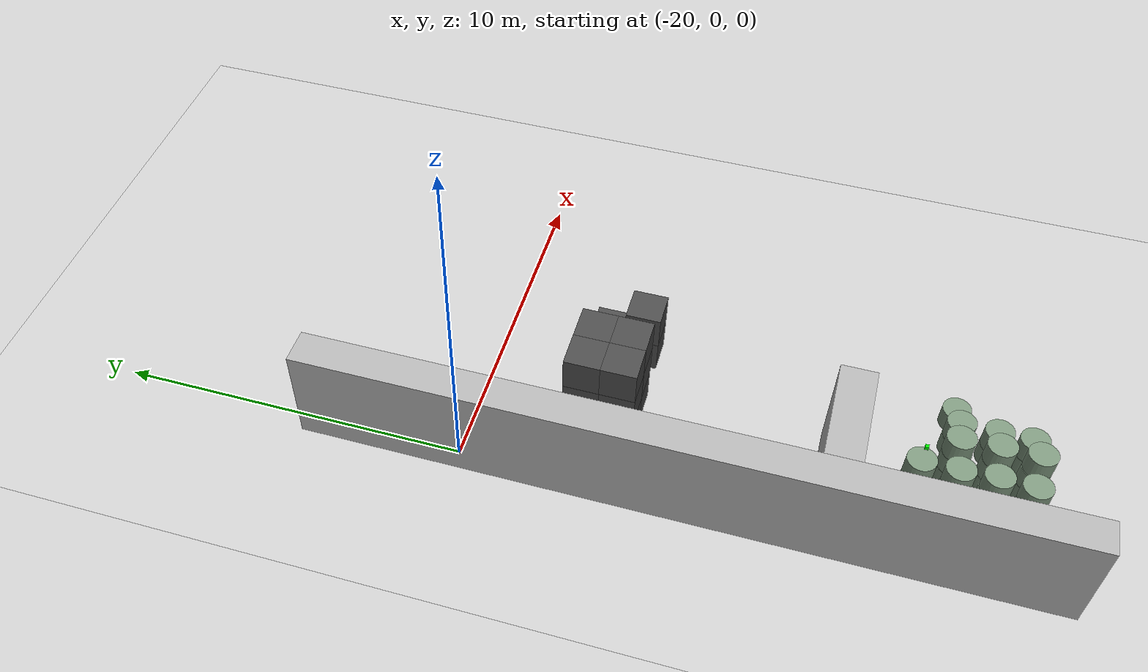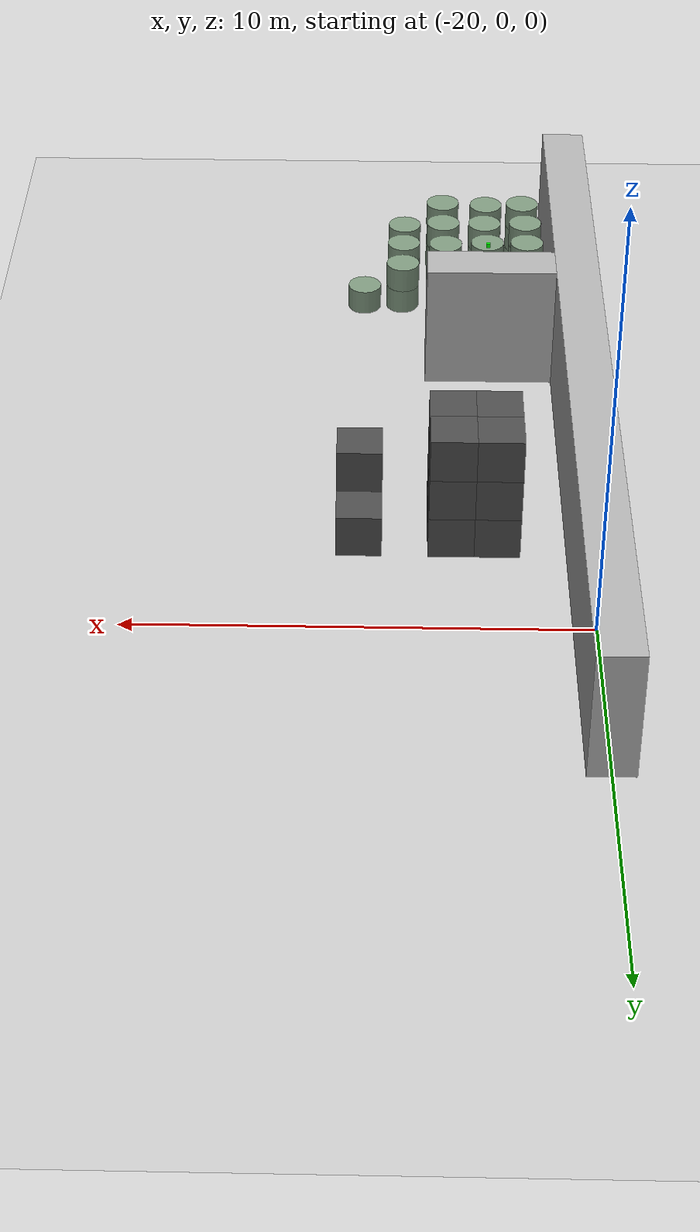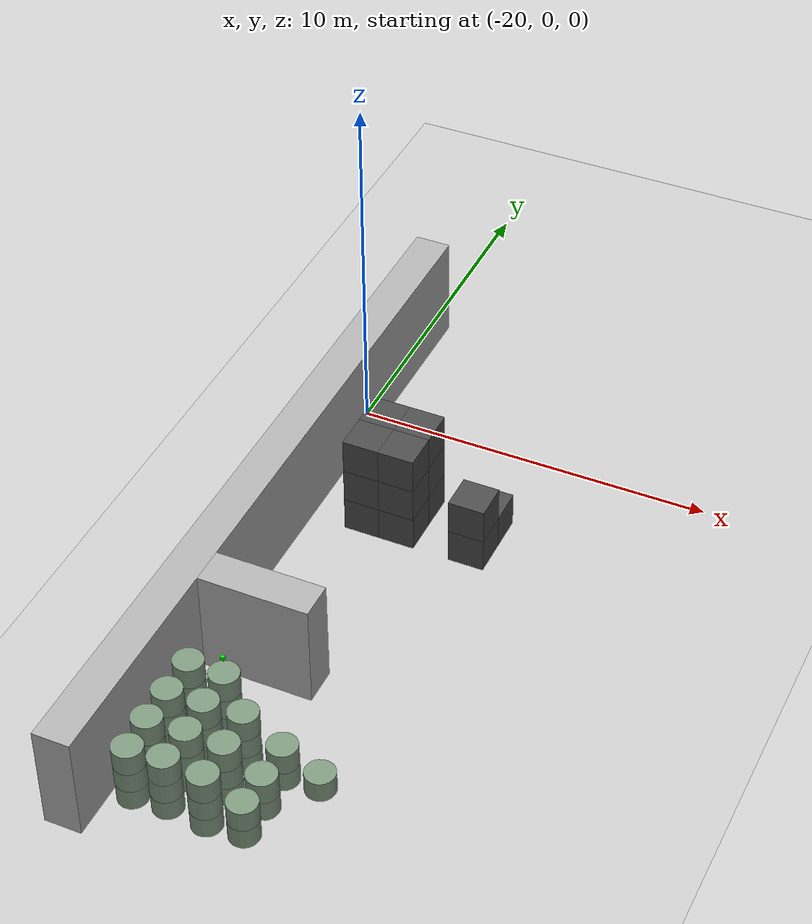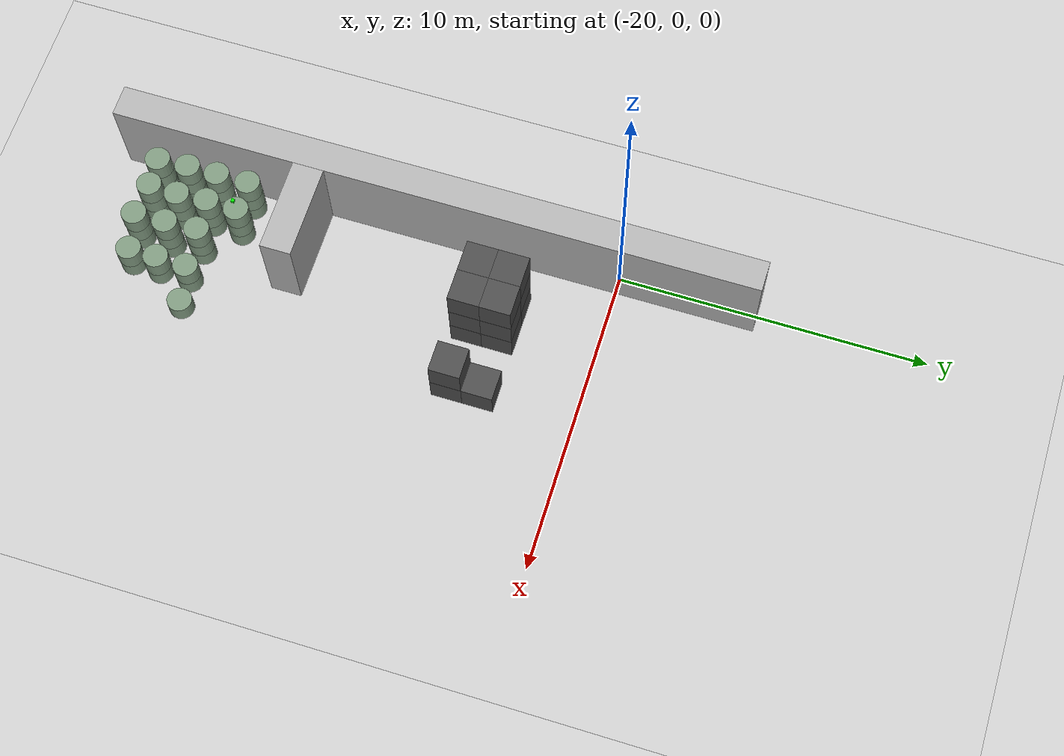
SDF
<sdf version="1.6">
 <world name="default">
  <model name="wall_0">
   <pose frame="sim_world">-20.0 -6.0 1.5 0 0 0</pose>
   <static>True</static>
   <link name="wall_0_link">
    <inertial>
     <mass>100</mass>
     <inertia>
      <ixx>0.166667</ixx>
      <ixy>0</ixy>
      <ixz>0</ixz>
      <iyy>0.166667</iyy>
      <iyz>0</iyz>
      <izz>0.166667</izz>
     </inertia>
    </inertial>
    <collision name="wall_0_collision">
     <geometry><box><size>1.0 21.0 3.0</size></box></geometry>
     <max_contacts>100</max_contacts>
    </collision>
    <visual name="wall_0_visual">
     <geometry><box><size>1.0 21.0 3.0</size></box></geometry>
     <material><ambient>0.7 0.7 0.7 1</ambient><diffuse>0.7 0.7 0.7 1</diffuse></material>
    </visual>
   </link>
  </model>
  <model name="wall_7">
   <pose frame="sim_world">-18.0 -10.0 1.5 0 0 0</pose>
   <static>True</static>
   <link name="wall_7_link">
    <inertial>
     <mass>100</mass>
     <inertia>
      <ixx>0.166667</ixx>
      <ixy>0</ixy>
      <ixz>0</ixz>
      <iyy>0.166667</iyy>
      <iyz>0</iyz>
      <izz>0.166667</izz>
     </inertia>
    </inertial>
    <collision name="wall_7_collision">
     <geometry><box><size>3.0 1.0 3.0</size></box></geometry>
     <max_contacts>100</max_contacts>
    </collision>
    <visual name="wall_7_visual">
     <geometry><box><size>3.0 1.0 3.0</size></box></geometry>
     <material><ambient>0.7 0.7 0.7 1</ambient><diffuse>0.7 0.7 0.7 1</diffuse></material>
    </visual>
   </link>
  </model>
  <model name="box_0">
   <pose frame="sim_world">-18.0 -4.0 0.5 0 -0 0</pose>
   <static>True</static>
   <link name="box_0_link">
    <inertial>
     <mass>100</mass>
     <inertia>
      <ixx>0.166667</ixx>
      <ixy>0</ixy>
      <ixz>0</ixz>
      <iyy>0.166667</iyy>
      <iyz>0</iyz>
      <izz>0.166667</izz>
     </inertia>
    </inertial>
    <collision name="box_0_collision">
     <geometry><box><size>1.0 1.0 1.0</size></box></geometry>
     <max_contacts>100</max_contacts>
    </collision>
    <visual name="box_0_visual">
     <geometry><box><size>1.0 1.0 1.0</size></box></geometry>
     <material><ambient>0.3 0.3 0.3 1</ambient><diffuse>0.3 0.3 0.3 1</diffuse></material>
    </visual>
   </link>
  </model>
  <model name="box_1">
   <pose frame="sim_world">-18.0 -4.0 1.5 0 -0 0</pose>
   <static>True</static>
   <link name="box_1_link">
    <inertial>
     <mass>100</mass>
     <inertia>
      <ixx>0.166667</ixx>
      <ixy>0</ixy>
      <ixz>0</ixz>
      <iyy>0.166667</iyy>
      <iyz>0</iyz>
      <izz>0.166667</izz>
     </inertia>
    </inertial>
    <collision name="box_1_collision">
     <geometry><box><size>1.0 1.0 1.0</size></box></geometry>
     <max_contacts>100</max_contacts>
    </collision>
    <visual name="box_1_visual">
     <geometry><box><size>1.0 1.0 1.0</size></box></geometry>
     <material><ambient>0.3 0.3 0.3 1</ambient><diffuse>0.3 0.3 0.3 1</diffuse></material>
    </visual>
   </link>
  </model>
  <model name="box_2">
   <pose frame="sim_world">-18.0 -4.0 2.5 0 -0 0</pose>
   <static>True</static>
   <link name="box_2_link">
    <inertial>
     <mass>100</mass>
     <inertia>
      <ixx>0.166667</ixx>
      <ixy>0</ixy>
      <ixz>0</ixz>
      <iyy>0.166667</iyy>
      <iyz>0</iyz>
      <izz>0.166667</izz>
     </inertia>
    </inertial>
    <collision name="box_2_collision">
     <geometry><box><size>1.0 1.0 1.0</size></box></geometry>
     <max_contacts>100</max_contacts>
    </collision>
    <visual name="box_2_visual">
     <geometry><box><size>1.0 1.0 1.0</size></box></geometry>
     <material><ambient>0.3 0.3 0.3 1</ambient><diffuse>0.3 0.3 0.3 1</diffuse></material>
    </visual>
   </link>
  </model>
  <model name="box_3">
   <pose frame="sim_world">-18.0 -3.0 0.5 0 -0 0</pose>
   <static>True</static>
   <link name="box_3_link">
    <inertial>
     <mass>100</mass>
     <inertia>
      <ixx>0.166667</ixx>
      <ixy>0</ixy>
      <ixz>0</ixz>
      <iyy>0.166667</iyy>
      <iyz>0</iyz>
      <izz>0.166667</izz>
     </inertia>
    </inertial>
    <collision name="box_3_collision">
     <geometry><box><size>1.0 1.0 1.0</size></box></geometry>
     <max_contacts>100</max_contacts>
    </collision>
    <visual name="box_3_visual">
     <geometry><box><size>1.0 1.0 1.0</size></box></geometry>
     <material><ambient>0.3 0.3 0.3 1</ambient><diffuse>0.3 0.3 0.3 1</diffuse></material>
    </visual>
   </link>
  </model>
  <model name="box_4">
   <pose frame="sim_world">-18.0 -3.0 1.5 0 -0 0</pose>
   <static>True</static>
   <link name="box_4_link">
    <inertial>
     <mass>100</mass>
     <inertia>
      <ixx>0.166667</ixx>
      <ixy>0</ixy>
      <ixz>0</ixz>
      <iyy>0.166667</iyy>
      <iyz>0</iyz>
      <izz>0.166667</izz>
     </inertia>
    </inertial>
    <collision name="box_4_collision">
     <geometry><box><size>1.0 1.0 1.0</size></box></geometry>
     <max_contacts>100</max_contacts>
    </collision>
    <visual name="box_4_visual">
     <geometry><box><size>1.0 1.0 1.0</size></box></geometry>
     <material><ambient>0.3 0.3 0.3 1</ambient><diffuse>0.3 0.3 0.3 1</diffuse></material>
    </visual>
   </link>
  </model>
  <model name="box_5">
   <pose frame="sim_world">-18.0 -3.0 2.5 0 -0 0</pose>
   <static>True</static>
   <link name="box_5_link">
    <inertial>
     <mass>100</mass>
     <inertia>
      <ixx>0.166667</ixx>
      <ixy>0</ixy>
      <ixz>0</ixz>
      <iyy>0.166667</iyy>
      <iyz>0</iyz>
      <izz>0.166667</izz>
     </inertia>
    </inertial>
    <collision name="box_5_collision">
     <geometry><box><size>1.0 1.0 1.0</size></box></geometry>
     <max_contacts>100</max_contacts>
    </collision>
    <visual name="box_5_visual">
     <geometry><box><size>1.0 1.0 1.0</size></box></geometry>
     <material><ambient>0.3 0.3 0.3 1</ambient><diffuse>0.3 0.3 0.3 1</diffuse></material>
    </visual>
   </link>
  </model>
  <model name="box_15">
   <pose frame="sim_world">-17.0 -4.0 0.5 0 -0 0</pose>
   <static>True</static>
   <link name="box_15_link">
    <inertial>
     <mass>100</mass>
     <inertia>
      <ixx>0.166667</ixx>
      <ixy>0</ixy>
      <ixz>0</ixz>
      <iyy>0.166667</iyy>
      <iyz>0</iyz>
      <izz>0.166667</izz>
     </inertia>
    </inertial>
    <collision name="box_15_collision">
     <geometry><box><size>1.0 1.0 1.0</size></box></geometry>
     <max_contacts>100</max_contacts>
    </collision>
    <visual name="box_15_visual">
     <geometry><box><size>1.0 1.0 1.0</size></box></geometry>
     <material><ambient>0.3 0.3 0.3 1</ambient><diffuse>0.3 0.3 0.3 1</diffuse></material>
    </visual>
   </link>
  </model>
  <model name="box_16">
   <pose frame="sim_world">-17.0 -4.0 1.5 0 -0 0</pose>
   <static>True</static>
   <link name="box_16_link">
    <inertial>
     <mass>100</mass>
     <inertia>
      <ixx>0.166667</ixx>
      <ixy>0</ixy>
      <ixz>0</ixz>
      <iyy>0.166667</iyy>
      <iyz>0</iyz>
      <izz>0.166667</izz>
     </inertia>
    </inertial>
    <collision name="box_16_collision">
     <geometry><box><size>1.0 1.0 1.0</size></box></geometry>
     <max_contacts>100</max_contacts>
    </collision>
    <visual name="box_16_visual">
     <geometry><box><size>1.0 1.0 1.0</size></box></geometry>
     <material><ambient>0.3 0.3 0.3 1</ambient><diffuse>0.3 0.3 0.3 1</diffuse></material>
    </visual>
   </link>
  </model>
  <model name="box_17">
   <pose frame="sim_world">-17.0 -4.0 2.5 0 -0 0</pose>
   <static>True</static>
   <link name="box_17_link">
    <inertial>
     <mass>100</mass>
     <inertia>
      <ixx>0.166667</ixx>
      <ixy>0</ixy>
      <ixz>0</ixz>
      <iyy>0.166667</iyy>
      <iyz>0</iyz>
      <izz>0.166667</izz>
     </inertia>
    </inertial>
    <collision name="box_17_collision">
     <geometry><box><size>1.0 1.0 1.0</size></box></geometry>
     <max_contacts>100</max_contacts>
    </collision>
    <visual name="box_17_visual">
     <geometry><box><size>1.0 1.0 1.0</size></box></geometry>
     <material><ambient>0.3 0.3 0.3 1</ambient><diffuse>0.3 0.3 0.3 1</diffuse></material>
    </visual>
   </link>
  </model>
  <model name="box_18">
   <pose frame="sim_world">-17.0 -3.0 0.5 0 -0 0</pose>
   <static>True</static>
   <link name="box_18_link">
    <inertial>
     <mass>100</mass>
     <inertia>
      <ixx>0.166667</ixx>
      <ixy>0</ixy>
      <ixz>0</ixz>
      <iyy>0.166667</iyy>
      <iyz>0</iyz>
      <izz>0.166667</izz>
     </inertia>
    </inertial>
    <collision name="box_18_collision">
     <geometry><box><size>1.0 1.0 1.0</size></box></geometry>
     <max_contacts>100</max_contacts>
    </collision>
    <visual name="box_18_visual">
     <geometry><box><size>1.0 1.0 1.0</size></box></geometry>
     <material><ambient>0.3 0.3 0.3 1</ambient><diffuse>0.3 0.3 0.3 1</diffuse></material>
    </visual>
   </link>
  </model>
  <model name="box_19">
   <pose frame="sim_world">-17.0 -3.0 1.5 0 -0 0</pose>
   <static>True</static>
   <link name="box_19_link">
    <inertial>
     <mass>100</mass>
     <inertia>
      <ixx>0.166667</ixx>
      <ixy>0</ixy>
      <ixz>0</ixz>
      <iyy>0.166667</iyy>
      <iyz>0</iyz>
      <izz>0.166667</izz>
     </inertia>
    </inertial>
    <collision name="box_19_collision">
     <geometry><box><size>1.0 1.0 1.0</size></box></geometry>
     <max_contacts>100</max_contacts>
    </collision>
    <visual name="box_19_visual">
     <geometry><box><size>1.0 1.0 1.0</size></box></geometry>
     <material><ambient>0.3 0.3 0.3 1</ambient><diffuse>0.3 0.3 0.3 1</diffuse></material>
    </visual>
   </link>
  </model>
  <model name="box_20">
   <pose frame="sim_world">-17.0 -3.0 2.5 0 -0 0</pose>
   <static>True</static>
   <link name="box_20_link">
    <inertial>
     <mass>100</mass>
     <inertia>
      <ixx>0.166667</ixx>
      <ixy>0</ixy>
      <ixz>0</ixz>
      <iyy>0.166667</iyy>
      <iyz>0</iyz>
      <izz>0.166667</izz>
     </inertia>
    </inertial>
    <collision name="box_20_collision">
     <geometry><box><size>1.0 1.0 1.0</size></box></geometry>
     <max_contacts>100</max_contacts>
    </collision>
    <visual name="box_20_visual">
     <geometry><box><size>1.0 1.0 1.0</size></box></geometry>
     <material><ambient>0.3 0.3 0.3 1</ambient><diffuse>0.3 0.3 0.3 1</diffuse></material>
    </visual>
   </link>
  </model>
  <model name="box_30">
   <pose frame="sim_world">-15.0 -4.0 0.5 0 -0 0</pose>
   <static>True</static>
   <link name="box_30_link">
    <inertial>
     <mass>100</mass>
     <inertia>
      <ixx>0.166667</ixx>
      <ixy>0</ixy>
      <ixz>0</ixz>
      <iyy>0.166667</iyy>
      <iyz>0</iyz>
      <izz>0.166667</izz>
     </inertia>
    </inertial>
    <collision name="box_30_collision">
     <geometry><box><size>1.0 1.0 1.0</size></box></geometry>
     <max_contacts>100</max_contacts>
    </collision>
    <visual name="box_30_visual">
     <geometry><box><size>1.0 1.0 1.0</size></box></geometry>
     <material><ambient>0.3 0.3 0.3 1</ambient><diffuse>0.3 0.3 0.3 1</diffuse></material>
    </visual>
   </link>
  </model>
  <model name="box_31">
   <pose frame="sim_world">-15.0 -4.0 1.5 0 -0 0</pose>
   <static>True</static>
   <link name="box_31_link">
    <inertial>
     <mass>100</mass>
     <inertia>
      <ixx>0.166667</ixx>
      <ixy>0</ixy>
      <ixz>0</ixz>
      <iyy>0.166667</iyy>
      <iyz>0</iyz>
      <izz>0.166667</izz>
     </inertia>
    </inertial>
    <collision name="box_31_collision">
     <geometry><box><size>1.0 1.0 1.0</size></box></geometry>
     <max_contacts>100</max_contacts>
    </collision>
    <visual name="box_31_visual">
     <geometry><box><size>1.0 1.0 1.0</size></box></geometry>
     <material><ambient>0.3 0.3 0.3 1</ambient><diffuse>0.3 0.3 0.3 1</diffuse></material>
    </visual>
   </link>
  </model>
  <model name="box_32">
   <pose frame="sim_world">-15.0 -3.0 0.5 0 -0 0</pose>
   <static>True</static>
   <link name="box_32_link">
    <inertial>
     <mass>100</mass>
     <inertia>
      <ixx>0.166667</ixx>
      <ixy>0</ixy>
      <ixz>0</ixz>
      <iyy>0.166667</iyy>
      <iyz>0</iyz>
      <izz>0.166667</izz>
     </inertia>
    </inertial>
    <collision name="box_32_collision">
     <geometry><box><size>1.0 1.0 1.0</size></box></geometry>
     <max_contacts>100</max_contacts>
    </collision>
    <visual name="box_32_visual">
     <geometry><box><size>1.0 1.0 1.0</size></box></geometry>
     <material><ambient>0.3 0.3 0.3 1</ambient><diffuse>0.3 0.3 0.3 1</diffuse></material>
    </visual>
   </link>
  </model>
  <model name="cylinder_0">
   <pose frame="sim_world">-18.959316148 -15.007619558 0.3 0 -0 0</pose>
   <static>True</static>
   <link name="cylinder_0_link">
    <inertial>
     <mass>100</mass>
     <inertia><ixx>0.145833</ixx><ixy>0</ixy><ixz>0</ixz><iyy>0.145833</iyy><iyz>0</iyz><izz>0.125</izz></inertia>
    </inertial>
    <collision name="cylinder_0_collision">
     <geometry><cylinder><length>0.6</length><radius>0.4</radius></cylinder></geometry>
     <max_contacts>100</max_contacts>
    </collision>
    <visual name="cylinder_0_visual">
     <geometry><cylinder><length>0.6</length><radius>0.4</radius></cylinder></geometry>
     <material><ambient>0.5 0.6 0.5 1</ambient><diffuse>0.5 0.6 0.5 1</diffuse></material>
    </visual>
   </link>
  </model>
  <model name="cylinder_1">
   <pose frame="sim_world">-18.971308413 -15.0053312633 0.9 0 -0 0</pose>
   <static>True</static>
   <link name="cylinder_1_link">
    <inertial>
     <mass>100</mass>
     <inertia><ixx>0.145833</ixx><ixy>0</ixy><ixz>0</ixz><iyy>0.145833</iyy><iyz>0</iyz><izz>0.125</izz></inertia>
    </inertial>
    <collision name="cylinder_1_collision">
     <geometry><cylinder><length>0.6</length><radius>0.4</radius></cylinder></geometry>
     <max_contacts>100</max_contacts>
    </collision>
    <visual name="cylinder_1_visual">
     <geometry><cylinder><length>0.6</length><radius>0.4</radius></cylinder></geometry>
     <material><ambient>0.5 0.6 0.5 1</ambient><diffuse>0.5 0.6 0.5 1</diffuse></material>
    </visual>
   </link>
  </model>
  <model name="cylinder_2">
   <pose frame="sim_world">-18.9624821748 -15.0196600294 1.5 0 -0 0</pose>
   <static>True</static>
   <link name="cylinder_2_link">
    <inertial>
     <mass>100</mass>
     <inertia><ixx>0.145833</ixx><ixy>0</ixy><ixz>0</ixz><iyy>0.145833</iyy><iyz>0</iyz><izz>0.125</izz></inertia>
    </inertial>
    <collision name="cylinder_2_collision">
     <geometry><cylinder><length>0.6</length><radius>0.4</radius></cylinder></geometry>
     <max_contacts>100</max_contacts>
    </collision>
    <visual name="cylinder_2_visual">
     <geometry><cylinder><length>0.6</length><radius>0.4</radius></cylinder></geometry>
     <material><ambient>0.5 0.6 0.5 1</ambient><diffuse>0.5 0.6 0.5 1</diffuse></material>
    </visual>
   </link>
  </model>
  <model name="cylinder_3">
   <pose frame="sim_world">-19.0131632857 -14.0317107217 0.3 0 -0 0</pose>
   <static>True</static>
   <link name="cylinder_3_link">
    <inertial>
     <mass>100</mass>
     <inertia><ixx>0.145833</ixx><ixy>0</ixy><ixz>0</ixz><iyy>0.145833</iyy><iyz>0</iyz><izz>0.125</izz></inertia>
    </inertial>
    <collision name="cylinder_3_collision">
     <geometry><cylinder><length>0.6</length><radius>0.4</radius></cylinder></geometry>
     <max_contacts>100</max_contacts>
    </collision>
    <visual name="cylinder_3_visual">
     <geometry><cylinder><length>0.6</length><radius>0.4</radius></cylinder></geometry>
     <material><ambient>0.5 0.6 0.5 1</ambient><diffuse>0.5 0.6 0.5 1</diffuse></material>
    </visual>
   </link>
  </model>
  <model name="cylinder_4">
   <pose frame="sim_world">-19.0187849716 -14.0319232782 0.9 0 -0 0</pose>
   <static>True</static>
   <link name="cylinder_4_link">
    <inertial>
     <mass>100</mass>
     <inertia><ixx>0.145833</ixx><ixy>0</ixy><ixz>0</ixz><iyy>0.145833</iyy><iyz>0</iyz><izz>0.125</izz></inertia>
    </inertial>
    <collision name="cylinder_4_collision">
     <geometry><cylinder><length>0.6</length><radius>0.4</radius></cylinder></geometry>
     <max_contacts>100</max_contacts>
    </collision>
    <visual name="cylinder_4_visual">
     <geometry><cylinder><length>0.6</length><radius>0.4</radius></cylinder></geometry>
     <material><ambient>0.5 0.6 0.5 1</ambient><diffuse>0.5 0.6 0.5 1</diffuse></material>
    </visual>
   </link>
  </model>
  <model name="cylinder_5">
   <pose frame="sim_world">-19.0073196621 -14.029464429 1.5 0 -0 0</pose>
   <static>True</static>
   <link name="cylinder_5_link">
    <inertial>
     <mass>100</mass>
     <inertia><ixx>0.145833</ixx><ixy>0</ixy><ixz>0</ixz><iyy>0.145833</iyy><iyz>0</iyz><izz>0.125</izz></inertia>
    </inertial>
    <collision name="cylinder_5_collision">
     <geometry><cylinder><length>0.6</length><radius>0.4</radius></cylinder></geometry>
     <max_contacts>100</max_contacts>
    </collision>
    <visual name="cylinder_5_visual">
     <geometry><cylinder><length>0.6</length><radius>0.4</radius></cylinder></geometry>
     <material><ambient>0.5 0.6 0.5 1</ambient><diffuse>0.5 0.6 0.5 1</diffuse></material>
    </visual>
   </link>
  </model>
  <model name="cylinder_6">
   <pose frame="sim_world">-19.0106808841 -13.0456514003 0.3 0 -0 0</pose>
   <static>True</static>
   <link name="cylinder_6_link">
    <inertial>
     <mass>100</mass>
     <inertia><ixx>0.145833</ixx><ixy>0</ixy><ixz>0</ixz><iyy>0.145833</iyy><iyz>0</iyz><izz>0.125</izz></inertia>
    </inertial>
    <collision name="cylinder_6_collision">
     <geometry><cylinder><length>0.6</length><radius>0.4</radius></cylinder></geometry>
     <max_contacts>100</max_contacts>
    </collision>
    <visual name="cylinder_6_visual">
     <geometry><cylinder><length>0.6</length><radius>0.4</radius></cylinder></geometry>
     <material><ambient>0.5 0.6 0.5 1</ambient><diffuse>0.5 0.6 0.5 1</diffuse></material>
    </visual>
   </link>
  </model>
  <model name="cylinder_7">
   <pose frame="sim_world">-19.0153126584 -13.0365221567 0.9 0 -0 0</pose>
   <static>True</static>
   <link name="cylinder_7_link">
    <inertial>
     <mass>100</mass>
     <inertia><ixx>0.145833</ixx><ixy>0</ixy><ixz>0</ixz><iyy>0.145833</iyy><iyz>0</iyz><izz>0.125</izz></inertia>
    </inertial>
    <collision name="cylinder_7_collision">
     <geometry><cylinder><length>0.6</length><radius>0.4</radius></cylinder></geometry>
     <max_contacts>100</max_contacts>
    </collision>
    <visual name="cylinder_7_visual">
     <geometry><cylinder><length>0.6</length><radius>0.4</radius></cylinder></geometry>
     <material><ambient>0.5 0.6 0.5 1</ambient><diffuse>0.5 0.6 0.5 1</diffuse></material>
    </visual>
   </link>
  </model>
  <model name="cylinder_8">
   <pose frame="sim_world">-19.0114435529 -13.0450554993 1.5 0 -0 0</pose>
   <static>True</static>
   <link name="cylinder_8_link">
    <inertial>
     <mass>100</mass>
     <inertia><ixx>0.145833</ixx><ixy>0</ixy><ixz>0</ixz><iyy>0.145833</iyy><iyz>0</iyz><izz>0.125</izz></inertia>
    </inertial>
    <collision name="cylinder_8_collision">
     <geometry><cylinder><length>0.6</length><radius>0.4</radius></cylinder></geometry>
     <max_contacts>100</max_contacts>
    </collision>
    <visual name="cylinder_8_visual">
     <geometry><cylinder><length>0.6</length><radius>0.4</radius></cylinder></geometry>
     <material><ambient>0.5 0.6 0.5 1</ambient><diffuse>0.5 0.6 0.5 1</diffuse></material>
    </visual>
   </link>
  </model>
  <model name="cylinder_9">
   <pose frame="sim_world">-19.001624628 -11.9979221648 0.3 0 -0 0</pose>
   <static>True</static>
   <link name="cylinder_9_link">
    <inertial>
     <mass>100</mass>
     <inertia><ixx>0.145833</ixx><ixy>0</ixy><ixz>0</ixz><iyy>0.145833</iyy><iyz>0</iyz><izz>0.125</izz></inertia>
    </inertial>
    <collision name="cylinder_9_collision">
     <geometry><cylinder><length>0.6</length><radius>0.4</radius></cylinder></geometry>
     <max_contacts>100</max_contacts>
    </collision>
    <visual name="cylinder_9_visual">
     <geometry><cylinder><length>0.6</length><radius>0.4</radius></cylinder></geometry>
     <material><ambient>0.5 0.6 0.5 1</ambient><diffuse>0.5 0.6 0.5 1</diffuse></material>
    </visual>
   </link>
  </model>
  <model name="cylinder_10">
   <pose frame="sim_world">-19.0097403797 -11.9995039183 0.9 0 -0 0</pose>
   <static>True</static>
   <link name="cylinder_10_link">
    <inertial>
     <mass>100</mass>
     <inertia><ixx>0.145833</ixx><ixy>0</ixy><ixz>0</ixz><iyy>0.145833</iyy><iyz>0</iyz><izz>0.125</izz></inertia>
    </inertial>
    <collision name="cylinder_10_collision">
     <geometry><cylinder><length>0.6</length><radius>0.4</radius></cylinder></geometry>
     <max_contacts>100</max_contacts>
    </collision>
    <visual name="cylinder_10_visual">
     <geometry><cylinder><length>0.6</length><radius>0.4</radius></cylinder></geometry>
     <material><ambient>0.5 0.6 0.5 1</ambient><diffuse>0.5 0.6 0.5 1</diffuse></material>
    </visual>
   </link>
  </model>
  <model name="cylinder_11">
   <pose frame="sim_world">-19.0067263731 -12.0035253512 1.5 0 -0 0</pose>
   <static>True</static>
   <link name="cylinder_11_link">
    <inertial>
     <mass>100</mass>
     <inertia><ixx>0.145833</ixx><ixy>0</ixy><ixz>0</ixz><iyy>0.145833</iyy><iyz>0</iyz><izz>0.125</izz></inertia>
    </inertial>
    <collision name="cylinder_11_collision">
     <geometry><cylinder><length>0.6</length><radius>0.4</radius></cylinder></geometry>
     <max_contacts>100</max_contacts>
    </collision>
    <visual name="cylinder_11_visual">
     <geometry><cylinder><length>0.6</length><radius>0.4</radius></cylinder></geometry>
     <material><ambient>0.5 0.6 0.5 1</ambient><diffuse>0.5 0.6 0.5 1</diffuse></material>
    </visual>
   </link>
  </model>
  <model name="cylinder_12">
   <pose frame="sim_world">-18.0480509087 -14.9457795685 0.3 0 -0 0</pose>
   <static>True</static>
   <link name="cylinder_12_link">
    <inertial>
     <mass>100</mass>
     <inertia><ixx>0.145833</ixx><ixy>0</ixy><ixz>0</ixz><iyy>0.145833</iyy><iyz>0</iyz><izz>0.125</izz></inertia>
    </inertial>
    <collision name="cylinder_12_collision">
     <geometry><cylinder><length>0.6</length><radius>0.4</radius></cylinder></geometry>
     <max_contacts>100</max_contacts>
    </collision>
    <visual name="cylinder_12_visual">
     <geometry><cylinder><length>0.6</length><radius>0.4</radius></cylinder></geometry>
     <material><ambient>0.5 0.6 0.5 1</ambient><diffuse>0.5 0.6 0.5 1</diffuse></material>
    </visual>
   </link>
  </model>
  <model name="cylinder_13">
   <pose frame="sim_world">-18.0464342256 -14.9599474216 0.9 0 -0 0</pose>
   <static>True</static>
   <link name="cylinder_13_link">
    <inertial>
     <mass>100</mass>
     <inertia><ixx>0.145833</ixx><ixy>0</ixy><ixz>0</ixz><iyy>0.145833</iyy><iyz>0</iyz><izz>0.125</izz></inertia>
    </inertial>
    <collision name="cylinder_13_collision">
     <geometry><cylinder><length>0.6</length><radius>0.4</radius></cylinder></geometry>
     <max_contacts>100</max_contacts>
    </collision>
    <visual name="cylinder_13_visual">
     <geometry><cylinder><length>0.6</length><radius>0.4</radius></cylinder></geometry>
     <material><ambient>0.5 0.6 0.5 1</ambient><diffuse>0.5 0.6 0.5 1</diffuse></material>
    </visual>
   </link>
  </model>
  <model name="cylinder_14">
   <pose frame="sim_world">-18.0468014585 -14.9503536522 1.5 0 -0 0</pose>
   <static>True</static>
   <link name="cylinder_14_link">
    <inertial>
     <mass>100</mass>
     <inertia><ixx>0.145833</ixx><ixy>0</ixy><ixz>0</ixz><iyy>0.145833</iyy><iyz>0</iyz><izz>0.125</izz></inertia>
    </inertial>
    <collision name="cylinder_14_collision">
     <geometry><cylinder><length>0.6</length><radius>0.4</radius></cylinder></geometry>
     <max_contacts>100</max_contacts>
    </collision>
    <visual name="cylinder_14_visual">
     <geometry><cylinder><length>0.6</length><radius>0.4</radius></cylinder></geometry>
     <material><ambient>0.5 0.6 0.5 1</ambient><diffuse>0.5 0.6 0.5 1</diffuse></material>
    </visual>
   </link>
  </model>
  <model name="cylinder_15">
   <pose frame="sim_world">-17.9912553921 -13.9925472065 0.3 0 -0 0</pose>
   <static>True</static>
   <link name="cylinder_15_link">
    <inertial>
     <mass>100</mass>
     <inertia><ixx>0.145833</ixx><ixy>0</ixy><ixz>0</ixz><iyy>0.145833</iyy><iyz>0</iyz><izz>0.125</izz></inertia>
    </inertial>
    <collision name="cylinder_15_collision">
     <geometry><cylinder><length>0.6</length><radius>0.4</radius></cylinder></geometry>
     <max_contacts>100</max_contacts>
    </collision>
    <visual name="cylinder_15_visual">
     <geometry><cylinder><length>0.6</length><radius>0.4</radius></cylinder></geometry>
     <material><ambient>0.5 0.6 0.5 1</ambient><diffuse>0.5 0.6 0.5 1</diffuse></material>
    </visual>
   </link>
  </model>
  <model name="cylinder_16">
   <pose frame="sim_world">-17.9995498637 -13.9826432503 0.9 0 -0 0</pose>
   <static>True</static>
   <link name="cylinder_16_link">
    <inertial>
     <mass>100</mass>
     <inertia><ixx>0.145833</ixx><ixy>0</ixy><ixz>0</ixz><iyy>0.145833</iyy><iyz>0</iyz><izz>0.125</izz></inertia>
    </inertial>
    <collision name="cylinder_16_collision">
     <geometry><cylinder><length>0.6</length><radius>0.4</radius></cylinder></geometry>
     <max_contacts>100</max_contacts>
    </collision>
    <visual name="cylinder_16_visual">
     <geometry><cylinder><length>0.6</length><radius>0.4</radius></cylinder></geometry>
     <material><ambient>0.5 0.6 0.5 1</ambient><diffuse>0.5 0.6 0.5 1</diffuse></material>
    </visual>
   </link>
  </model>
  <model name="cylinder_17">
   <pose frame="sim_world">-17.9888384934 -13.9974671024 1.5 0 -0 0</pose>
   <static>True</static>
   <link name="cylinder_17_link">
    <inertial>
     <mass>100</mass>
     <inertia><ixx>0.145833</ixx><ixy>0</ixy><ixz>0</ixz><iyy>0.145833</iyy><iyz>0</iyz><izz>0.125</izz></inertia>
    </inertial>
    <collision name="cylinder_17_collision">
     <geometry><cylinder><length>0.6</length><radius>0.4</radius></cylinder></geometry>
     <max_contacts>100</max_contacts>
    </collision>
    <visual name="cylinder_17_visual">
     <geometry><cylinder><length>0.6</length><radius>0.4</radius></cylinder></geometry>
     <material><ambient>0.5 0.6 0.5 1</ambient><diffuse>0.5 0.6 0.5 1</diffuse></material>
    </visual>
   </link>
  </model>
  <model name="cylinder_18">
   <pose frame="sim_world">-18.0441864407 -13.010032218 0.3 0 -0 0</pose>
   <static>True</static>
   <link name="cylinder_18_link">
    <inertial>
     <mass>100</mass>
     <inertia><ixx>0.145833</ixx><ixy>0</ixy><ixz>0</ixz><iyy>0.145833</iyy><iyz>0</iyz><izz>0.125</izz></inertia>
    </inertial>
    <collision name="cylinder_18_collision">
     <geometry><cylinder><length>0.6</length><radius>0.4</radius></cylinder></geometry>
     <max_contacts>100</max_contacts>
    </collision>
    <visual name="cylinder_18_visual">
     <geometry><cylinder><length>0.6</length><radius>0.4</radius></cylinder></geometry>
     <material><ambient>0.5 0.6 0.5 1</ambient><diffuse>0.5 0.6 0.5 1</diffuse></material>
    </visual>
   </link>
  </model>
  <model name="cylinder_19">
   <pose frame="sim_world">-18.0386908344 -13.0221577667 0.9 0 -0 0</pose>
   <static>True</static>
   <link name="cylinder_19_link">
    <inertial>
     <mass>100</mass>
     <inertia><ixx>0.145833</ixx><ixy>0</ixy><ixz>0</ixz><iyy>0.145833</iyy><iyz>0</iyz><izz>0.125</izz></inertia>
    </inertial>
    <collision name="cylinder_19_collision">
     <geometry><cylinder><length>0.6</length><radius>0.4</radius></cylinder></geometry>
     <max_contacts>100</max_contacts>
    </collision>
    <visual name="cylinder_19_visual">
     <geometry><cylinder><length>0.6</length><radius>0.4</radius></cylinder></geometry>
     <material><ambient>0.5 0.6 0.5 1</ambient><diffuse>0.5 0.6 0.5 1</diffuse></material>
    </visual>
   </link>
  </model>
  <model name="cylinder_20">
   <pose frame="sim_world">-18.0394728223 -13.0261113794 1.5 0 -0 0</pose>
   <static>True</static>
   <link name="cylinder_20_link">
    <inertial>
     <mass>100</mass>
     <inertia><ixx>0.145833</ixx><ixy>0</ixy><ixz>0</ixz><iyy>0.145833</iyy><iyz>0</iyz><izz>0.125</izz></inertia>
    </inertial>
    <collision name="cylinder_20_collision">
     <geometry><cylinder><length>0.6</length><radius>0.4</radius></cylinder></geometry>
     <max_contacts>100</max_contacts>
    </collision>
    <visual name="cylinder_20_visual">
     <geometry><cylinder><length>0.6</length><radius>0.4</radius></cylinder></geometry>
     <material><ambient>0.5 0.6 0.5 1</ambient><diffuse>0.5 0.6 0.5 1</diffuse></material>
    </visual>
   </link>
  </model>
  <model name="cylinder_21">
   <pose frame="sim_world">-18.0126456825 -12.0274707847 0.3 0 -0 0</pose>
   <static>True</static>
   <link name="cylinder_21_link">
    <inertial>
     <mass>100</mass>
     <inertia><ixx>0.145833</ixx><ixy>0</ixy><ixz>0</ixz><iyy>0.145833</iyy><iyz>0</iyz><izz>0.125</izz></inertia>
    </inertial>
    <collision name="cylinder_21_collision">
     <geometry><cylinder><length>0.6</length><radius>0.4</radius></cylinder></geometry>
     <max_contacts>100</max_contacts>
    </collision>
    <visual name="cylinder_21_visual">
     <geometry><cylinder><length>0.6</length><radius>0.4</radius></cylinder></geometry>
     <material><ambient>0.5 0.6 0.5 1</ambient><diffuse>0.5 0.6 0.5 1</diffuse></material>
    </visual>
   </link>
   <model name="radiation_source_cylinder_21">
    <static>true</static>
    <link name="link_radiation_source_cylinder_21">
     <visual name="visual_radiation_source_cylinder_21_0">
      <geometry><box><size>0.1 0.1 0.1</size></box></geometry>
      <material><ambient>1 0.0  0 1.0</ambient><diffuse>1 0.0  0 1.0</diffuse></material>
     </visual>
     <visual name="visual_radiation_source_cylinder_21_1">
      <pose>0 0 2.0 0 0 0</pose>
      <geometry><box><size>0.1 0.1 0.1</size></box></geometry>
      <material><ambient>0 1.0  0 1.0</ambient><diffuse>0 1.0  0 1.0</diffuse></material>
     </visual>
     <sensor name="radiation_source_cylinder_21" type="radiation_source">
      <always_on>1</always_on>
      <update_rate>1.0</update_rate>
      <topic>source_1/gamma</topic>
      <plugin filename="libradiation_source_plugin.so" name="radiation_source_plugin"/>
     </sensor>
    </link>
   </model>
  </model>
  <model name="cylinder_22">
   <pose frame="sim_world">-18.0307509393 -12.0205106246 0.9 0 -0 0</pose>
   <static>True</static>
   <link name="cylinder_22_link">
    <inertial>
     <mass>100</mass>
     <inertia><ixx>0.145833</ixx><ixy>0</ixy><ixz>0</ixz><iyy>0.145833</iyy><iyz>0</iyz><izz>0.125</izz></inertia>
    </inertial>
    <collision name="cylinder_22_collision">
     <geometry><cylinder><length>0.6</length><radius>0.4</radius></cylinder></geometry>
     <max_contacts>100</max_contacts>
    </collision>
    <visual name="cylinder_22_visual">
     <geometry><cylinder><length>0.6</length><radius>0.4</radius></cylinder></geometry>
     <material><ambient>0.5 0.6 0.5 1</ambient><diffuse>0.5 0.6 0.5 1</diffuse></material>
    </visual>
   </link>
  </model>
  <model name="cylinder_23">
   <pose frame="sim_world">-18.0191130103 -12.0246754442 1.5 0 -0 0</pose>
   <static>True</static>
   <link name="cylinder_23_link">
    <inertial>
     <mass>100</mass>
     <inertia><ixx>0.145833</ixx><ixy>0</ixy><ixz>0</ixz><iyy>0.145833</iyy><iyz>0</iyz><izz>0.125</izz></inertia>
    </inertial>
    <collision name="cylinder_23_collision">
     <geometry><cylinder><length>0.6</length><radius>0.4</radius></cylinder></geometry>
     <max_contacts>100</max_contacts>
    </collision>
    <visual name="cylinder_23_visual">
     <geometry><cylinder><length>0.6</length><radius>0.4</radius></cylinder></geometry>
     <material><ambient>0.5 0.6 0.5 1</ambient><diffuse>0.5 0.6 0.5 1</diffuse></material>
    </visual>
   </link>
  </model>
  <model name="cylinder_24">
   <pose frame="sim_world">-16.9628417723 -15.0325641967 0.3 0 -0 0</pose>
   <static>True</static>
   <link name="cylinder_24_link">
    <inertial>
     <mass>100</mass>
     <inertia><ixx>0.145833</ixx><ixy>0</ixy><ixz>0</ixz><iyy>0.145833</iyy><iyz>0</iyz><izz>0.125</izz></inertia>
    </inertial>
    <collision name="cylinder_24_collision">
     <geometry><cylinder><length>0.6</length><radius>0.4</radius></cylinder></geometry>
     <max_contacts>100</max_contacts>
    </collision>
    <visual name="cylinder_24_visual">
     <geometry><cylinder><length>0.6</length><radius>0.4</radius></cylinder></geometry>
     <material><ambient>0.5 0.6 0.5 1</ambient><diffuse>0.5 0.6 0.5 1</diffuse></material>
    </visual>
   </link>
  </model>
  <model name="cylinder_25">
   <pose frame="sim_world">-16.9710085345 -15.0271398519 0.9 0 -0 0</pose>
   <static>True</static>
   <link name="cylinder_25_link">
    <inertial>
     <mass>100</mass>
     <inertia><ixx>0.145833</ixx><ixy>0</ixy><ixz>0</ixz><iyy>0.145833</iyy><iyz>0</iyz><izz>0.125</izz></inertia>
    </inertial>
    <collision name="cylinder_25_collision">
     <geometry><cylinder><length>0.6</length><radius>0.4</radius></cylinder></geometry>
     <max_contacts>100</max_contacts>
    </collision>
    <visual name="cylinder_25_visual">
     <geometry><cylinder><length>0.6</length><radius>0.4</radius></cylinder></geometry>
     <material><ambient>0.5 0.6 0.5 1</ambient><diffuse>0.5 0.6 0.5 1</diffuse></material>
    </visual>
   </link>
  </model>
  <model name="cylinder_26">
   <pose frame="sim_world">-16.9606058049 -15.0334589072 1.5 0 -0 0</pose>
   <static>True</static>
   <link name="cylinder_26_link">
    <inertial>
     <mass>100</mass>
     <inertia><ixx>0.145833</ixx><ixy>0</ixy><ixz>0</ixz><iyy>0.145833</iyy><iyz>0</iyz><izz>0.125</izz></inertia>
    </inertial>
    <collision name="cylinder_26_collision">
     <geometry><cylinder><length>0.6</length><radius>0.4</radius></cylinder></geometry>
     <max_contacts>100</max_contacts>
    </collision>
    <visual name="cylinder_26_visual">
     <geometry><cylinder><length>0.6</length><radius>0.4</radius></cylinder></geometry>
     <material><ambient>0.5 0.6 0.5 1</ambient><diffuse>0.5 0.6 0.5 1</diffuse></material>
    </visual>
   </link>
  </model>
  <model name="cylinder_27">
   <pose frame="sim_world">-16.9623312986 -13.9950573994 0.3 0 -0 0</pose>
   <static>True</static>
   <link name="cylinder_27_link">
    <inertial>
     <mass>100</mass>
     <inertia><ixx>0.145833</ixx><ixy>0</ixy><ixz>0</ixz><iyy>0.145833</iyy><iyz>0</iyz><izz>0.125</izz></inertia>
    </inertial>
    <collision name="cylinder_27_collision">
     <geometry><cylinder><length>0.6</length><radius>0.4</radius></cylinder></geometry>
     <max_contacts>100</max_contacts>
    </collision>
    <visual name="cylinder_27_visual">
     <geometry><cylinder><length>0.6</length><radius>0.4</radius></cylinder></geometry>
     <material><ambient>0.5 0.6 0.5 1</ambient><diffuse>0.5 0.6 0.5 1</diffuse></material>
    </visual>
   </link>
  </model>
  <model name="cylinder_28">
   <pose frame="sim_world">-16.9686922264 -14.0045581278 0.9 0 -0 0</pose>
   <static>True</static>
   <link name="cylinder_28_link">
    <inertial>
     <mass>100</mass>
     <inertia><ixx>0.145833</ixx><ixy>0</ixy><ixz>0</ixz><iyy>0.145833</iyy><iyz>0</iyz><izz>0.125</izz></inertia>
    </inertial>
    <collision name="cylinder_28_collision">
     <geometry><cylinder><length>0.6</length><radius>0.4</radius></cylinder></geometry>
     <max_contacts>100</max_contacts>
    </collision>
    <visual name="cylinder_28_visual">
     <geometry><cylinder><length>0.6</length><radius>0.4</radius></cylinder></geometry>
     <material><ambient>0.5 0.6 0.5 1</ambient><diffuse>0.5 0.6 0.5 1</diffuse></material>
    </visual>
   </link>
  </model>
  <model name="cylinder_29">
   <pose frame="sim_world">-16.9640531606 -14.0054770334 1.5 0 -0 0</pose>
   <static>True</static>
   <link name="cylinder_29_link">
    <inertial>
     <mass>100</mass>
     <inertia><ixx>0.145833</ixx><ixy>0</ixy><ixz>0</ixz><iyy>0.145833</iyy><iyz>0</iyz><izz>0.125</izz></inertia>
    </inertial>
    <collision name="cylinder_29_collision">
     <geometry><cylinder><length>0.6</length><radius>0.4</radius></cylinder></geometry>
     <max_contacts>100</max_contacts>
    </collision>
    <visual name="cylinder_29_visual">
     <geometry><cylinder><length>0.6</length><radius>0.4</radius></cylinder></geometry>
     <material><ambient>0.5 0.6 0.5 1</ambient><diffuse>0.5 0.6 0.5 1</diffuse></material>
    </visual>
   </link>
  </model>
  <model name="cylinder_30">
   <pose frame="sim_world">-17.0108594412 -12.962065762 0.3 0 -0 0</pose>
   <static>True</static>
   <link name="cylinder_30_link">
    <inertial>
     <mass>100</mass>
     <inertia><ixx>0.145833</ixx><ixy>0</ixy><ixz>0</ixz><iyy>0.145833</iyy><iyz>0</iyz><izz>0.125</izz></inertia>
    </inertial>
    <collision name="cylinder_30_collision">
     <geometry><cylinder><length>0.6</length><radius>0.4</radius></cylinder></geometry>
     <max_contacts>100</max_contacts>
    </collision>
    <visual name="cylinder_30_visual">
     <geometry><cylinder><length>0.6</length><radius>0.4</radius></cylinder></geometry>
     <material><ambient>0.5 0.6 0.5 1</ambient><diffuse>0.5 0.6 0.5 1</diffuse></material>
    </visual>
   </link>
  </model>
  <model name="cylinder_31">
   <pose frame="sim_world">-17.0171946455 -12.9706675206 0.9 0 -0 0</pose>
   <static>True</static>
   <link name="cylinder_31_link">
    <inertial>
     <mass>100</mass>
     <inertia><ixx>0.145833</ixx><ixy>0</ixy><ixz>0</ixz><iyy>0.145833</iyy><iyz>0</iyz><izz>0.125</izz></inertia>
    </inertial>
    <collision name="cylinder_31_collision">
     <geometry><cylinder><length>0.6</length><radius>0.4</radius></cylinder></geometry>
     <max_contacts>100</max_contacts>
    </collision>
    <visual name="cylinder_31_visual">
     <geometry><cylinder><length>0.6</length><radius>0.4</radius></cylinder></geometry>
     <material><ambient>0.5 0.6 0.5 1</ambient><diffuse>0.5 0.6 0.5 1</diffuse></material>
    </visual>
   </link>
  </model>
  <model name="cylinder_32">
   <pose frame="sim_world">-17.0100374706 -12.9580437569 1.5 0 -0 0</pose>
   <static>True</static>
   <link name="cylinder_32_link">
    <inertial>
     <mass>100</mass>
     <inertia><ixx>0.145833</ixx><ixy>0</ixy><ixz>0</ixz><iyy>0.145833</iyy><iyz>0</iyz><izz>0.125</izz></inertia>
    </inertial>
    <collision name="cylinder_32_collision">
     <geometry><cylinder><length>0.6</length><radius>0.4</radius></cylinder></geometry>
     <max_contacts>100</max_contacts>
    </collision>
    <visual name="cylinder_32_visual">
     <geometry><cylinder><length>0.6</length><radius>0.4</radius></cylinder></geometry>
     <material><ambient>0.5 0.6 0.5 1</ambient><diffuse>0.5 0.6 0.5 1</diffuse></material>
    </visual>
   </link>
  </model>
  <model name="cylinder_33">
   <pose frame="sim_world">-16.0108980464 -14.9606443265 0.3 0 -0 0</pose>
   <static>True</static>
   <link name="cylinder_33_link">
    <inertial>
     <mass>100</mass>
     <inertia><ixx>0.145833</ixx><ixy>0</ixy><ixz>0</ixz><iyy>0.145833</iyy><iyz>0</iyz><izz>0.125</izz></inertia>
    </inertial>
    <collision name="cylinder_33_collision">
     <geometry><cylinder><length>0.6</length><radius>0.4</radius></cylinder></geometry>
     <max_contacts>100</max_contacts>
    </collision>
    <visual name="cylinder_33_visual">
     <geometry><cylinder><length>0.6</length><radius>0.4</radius></cylinder></geometry>
     <material><ambient>0.5 0.6 0.5 1</ambient><diffuse>0.5 0.6 0.5 1</diffuse></material>
    </visual>
   </link>
  </model>
  <model name="cylinder_34">
   <pose frame="sim_world">-16.0106779408 -14.9615345483 0.9 0 -0 0</pose>
   <static>True</static>
   <link name="cylinder_34_link">
    <inertial>
     <mass>100</mass>
     <inertia><ixx>0.145833</ixx><ixy>0</ixy><ixz>0</ixz><iyy>0.145833</iyy><iyz>0</iyz><izz>0.125</izz></inertia>
    </inertial>
    <collision name="cylinder_34_collision">
     <geometry><cylinder><length>0.6</length><radius>0.4</radius></cylinder></geometry>
     <max_contacts>100</max_contacts>
    </collision>
    <visual name="cylinder_34_visual">
     <geometry><cylinder><length>0.6</length><radius>0.4</radius></cylinder></geometry>
     <material><ambient>0.5 0.6 0.5 1</ambient><diffuse>0.5 0.6 0.5 1</diffuse></material>
    </visual>
   </link>
  </model>
  <model name="cylinder_35">
   <pose frame="sim_world">-15.9763314349 -14.0353731398 0.3 0 -0 0</pose>
   <static>True</static>
   <link name="cylinder_35_link">
    <inertial>
     <mass>100</mass>
     <inertia><ixx>0.145833</ixx><ixy>0</ixy><ixz>0</ixz><iyy>0.145833</iyy><iyz>0</iyz><izz>0.125</izz></inertia>
    </inertial>
    <collision name="cylinder_35_collision">
     <geometry><cylinder><length>0.6</length><radius>0.4</radius></cylinder></geometry>
     <max_contacts>100</max_contacts>
    </collision>
    <visual name="cylinder_35_visual">
     <geometry><cylinder><length>0.6</length><radius>0.4</radius></cylinder></geometry>
     <material><ambient>0.5 0.6 0.5 1</ambient><diffuse>0.5 0.6 0.5 1</diffuse></material>
    </visual>
   </link>
  </model>
  <model name="cylinder_36">
   <pose frame="sim_world">-15.9892862791 -14.0357803046 0.9 0 -0 0</pose>
   <static>True</static>
   <link name="cylinder_36_link">
    <inertial>
     <mass>100</mass>
     <inertia><ixx>0.145833</ixx><ixy>0</ixy><ixz>0</ixz><iyy>0.145833</iyy><iyz>0</iyz><izz>0.125</izz></inertia>
    </inertial>
    <collision name="cylinder_36_collision">
     <geometry><cylinder><length>0.6</length><radius>0.4</radius></cylinder></geometry>
     <max_contacts>100</max_contacts>
    </collision>
    <visual name="cylinder_36_visual">
     <geometry><cylinder><length>0.6</length><radius>0.4</radius></cylinder></geometry>
     <material><ambient>0.5 0.6 0.5 1</ambient><diffuse>0.5 0.6 0.5 1</diffuse></material>
    </visual>
   </link>
  </model>
  <model name="cylinder_37">
   <pose frame="sim_world">-15.9638298799 -13.0269606284 0.3 0 -0 0</pose>
   <static>True</static>
   <link name="cylinder_37_link">
    <inertial>
     <mass>100</mass>
     <inertia><ixx>0.145833</ixx><ixy>0</ixy><ixz>0</ixz><iyy>0.145833</iyy><iyz>0</iyz><izz>0.125</izz></inertia>
    </inertial>
    <collision name="cylinder_37_collision">
     <geometry><cylinder><length>0.6</length><radius>0.4</radius></cylinder></geometry>
     <max_contacts>100</max_contacts>
    </collision>
    <visual name="cylinder_37_visual">
     <geometry><cylinder><length>0.6</length><radius>0.4</radius></cylinder></geometry>
     <material><ambient>0.5 0.6 0.5 1</ambient><diffuse>0.5 0.6 0.5 1</diffuse></material>
    </visual>
   </link>
  </model>
  <model name="cylinder_38">
   <pose frame="sim_world">-15.9644079218 -13.0309062052 0.9 0 -0 0</pose>
   <static>True</static>
   <link name="cylinder_38_link">
    <inertial>
     <mass>100</mass>
     <inertia><ixx>0.145833</ixx><ixy>0</ixy><ixz>0</ixz><iyy>0.145833</iyy><iyz>0</iyz><izz>0.125</izz></inertia>
    </inertial>
    <collision name="cylinder_38_collision">
     <geometry><cylinder><length>0.6</length><radius>0.4</radius></cylinder></geometry>
     <max_contacts>100</max_contacts>
    </collision>
    <visual name="cylinder_38_visual">
     <geometry><cylinder><length>0.6</length><radius>0.4</radius></cylinder></geometry>
     <material><ambient>0.5 0.6 0.5 1</ambient><diffuse>0.5 0.6 0.5 1</diffuse></material>
    </visual>
   </link>
  </model>
  <model name="cylinder_41">
   <pose frame="sim_world">-15.0226952298 -12.963823487 0.3 0 -0 0</pose>
   <static>True</static>
   <link name="cylinder_41_link">
    <inertial>
     <mass>100</mass>
     <inertia><ixx>0.145833</ixx><ixy>0</ixy><ixz>0</ixz><iyy>0.145833</iyy><iyz>0</iyz><izz>0.125</izz></inertia>
    </inertial>
    <collision name="cylinder_41_collision">
     <geometry><cylinder><length>0.6</length><radius>0.4</radius></cylinder></geometry>
     <max_contacts>100</max_contacts>
    </collision>
    <visual name="cylinder_41_visual">
     <geometry><cylinder><length>0.6</length><radius>0.4</radius></cylinder></geometry>
     <material><ambient>0.5 0.6 0.5 1</ambient><diffuse>0.5 0.6 0.5 1</diffuse></material>
    </visual>
   </link>
  </model>
  <include><uri>model://ground_plane</uri></include>
  <model name="ground_plane"><link name="ground_plane"/></model>
 </world>
</sdf>
